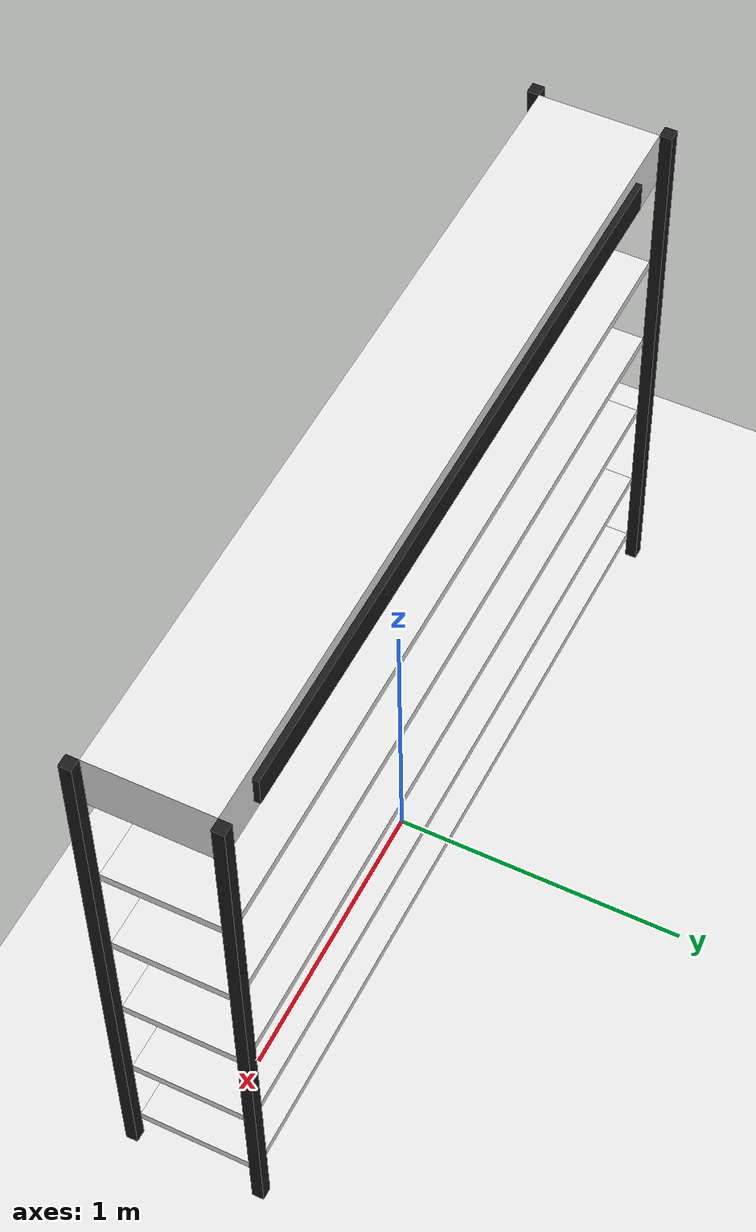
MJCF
<mujoco model="retail_shelf">
  <compiler angle="degree" coordinate="local" />
  <option timestep="0.01" gravity="0 0 -9.81" />

  <asset>
    <material name="mat_shelf" rgba="0.9 0.9 0.9 1" specular="0.3" shininess="0.2" />
    <material name="mat_frame" rgba="0.1 0.1 0.1 1" specular="0.5" shininess="0.8" />
  </asset>

  <default>
    <default class="frame">
      <geom type="box" size="0.02 0.02 1.0" material="mat_frame" />
    </default>
    <default class="shelf">
      <geom type="box" size="1.37 0.2 0.015" material="mat_shelf" condim="3" friction="1 0.005 0.0001" />
    </default>
  </default>

  <worldbody>
    <light pos="2 2 4" dir="0 0 -1" diffuse="0.8 0.8 0.8" />
    <geom name="floor" type="plane" size="5 5 0.1" rgba="0.9 0.9 0.9 1" />

    <body name="shelf_unit">
      <geom name="post_FL" class="frame" pos="-1.39 0.22 1.0" />
      <geom name="post_BL" class="frame" pos="-1.39 -0.22 1.0" />
      <geom name="post_FR" class="frame" pos="1.39 0.22 1.0" />
      <geom name="post_BR" class="frame" pos="1.39 -0.22 1.0" />

      <geom name="shelf_0" class="shelf" pos="0 0 0.1" />
      <geom name="shelf_1" class="shelf" pos="0 0 0.4" />
      <geom name="shelf_2" class="shelf" pos="0 0 0.75" />
      <geom name="shelf_3" class="shelf" pos="0 0 1.10" />
      <geom name="shelf_4" class="shelf" pos="0 0 1.45" />

      <body name="header" pos="0 0 1.9">
         <geom name="header_body" type="box" size="1.37 0.2 0.1" material="mat_shelf" />
         <geom name="logo_plate" type="box" size="1.2 0.01 0.05" pos="0 0.21 0" rgba="0.1 0.1 0.1 1" />
      </body>
    </body>
  </worldbody>
</mujoco>
